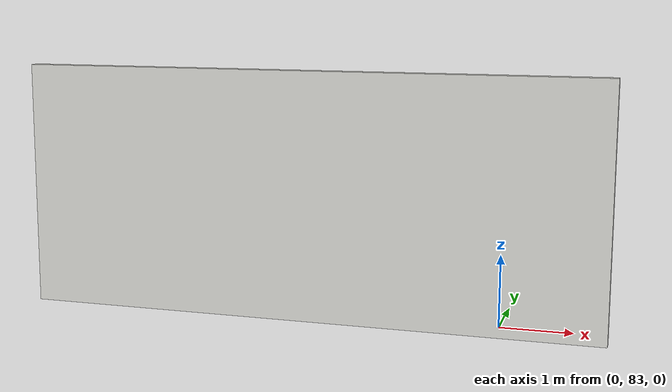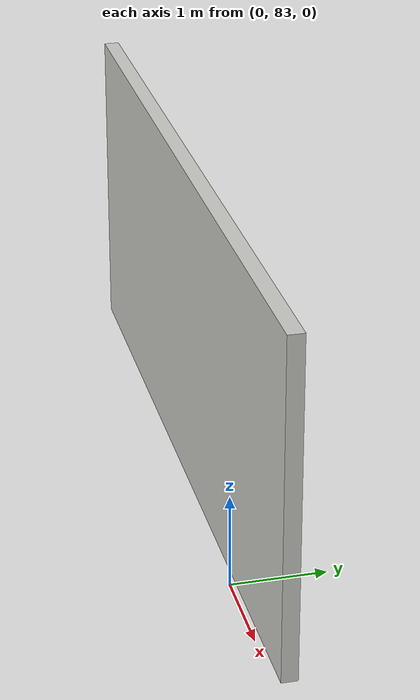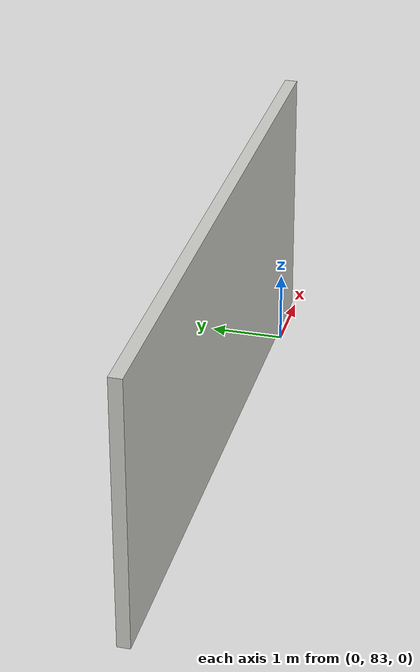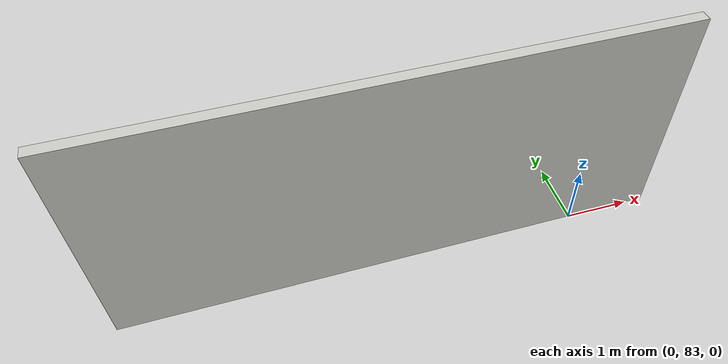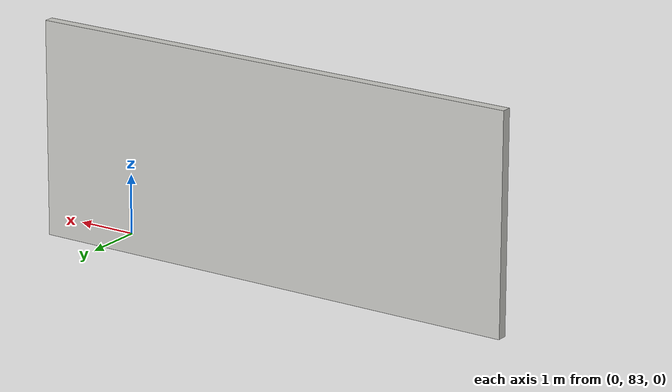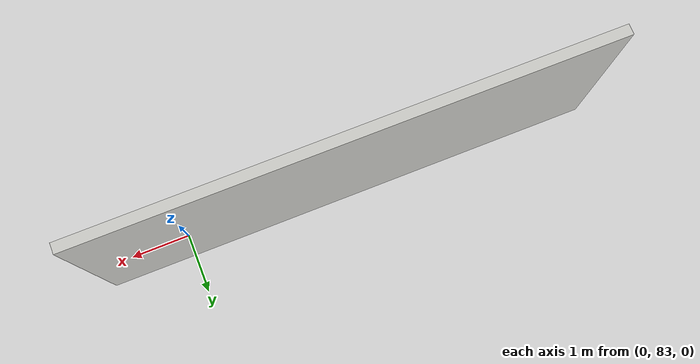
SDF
<?xml version='1.0'?>
<sdf version='1.7'>
  <model name='Untitled'>
    <pose>-2.816 41.649 0 0 -0 0</pose>
    <link name='Wall_39'>
      <collision name='Wall_39_Collision'>
        <geometry>
          <box>
            <size>8.5 0.17 3.6</size>
          </box>
        </geometry>
        <pose>0 0 1.6 0 -0 0</pose>
      </collision>
      <visual name='Wall_39_Visual'>
        <pose>0 0 1.6 0 -0 0</pose>
        <geometry>
          <box>
            <size>8.5 0.17 3.6</size>
          </box>
        </geometry>
        <material>
          <script>
            <uri>file://media/materials/scripts/gazebo.material</uri>
            <name>Gazebo/CeilingTiled</name>
          </script>
          <ambient>1 1 1 1</ambient>
        </material>
        <meta>
          <layer>0</layer>
        </meta>
      </visual>
      <pose>0 41.574 0 0 -0 0</pose>
    </link>
    <static>1</static>
  </model>
</sdf>
